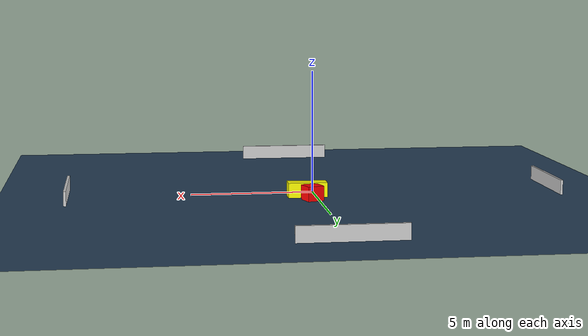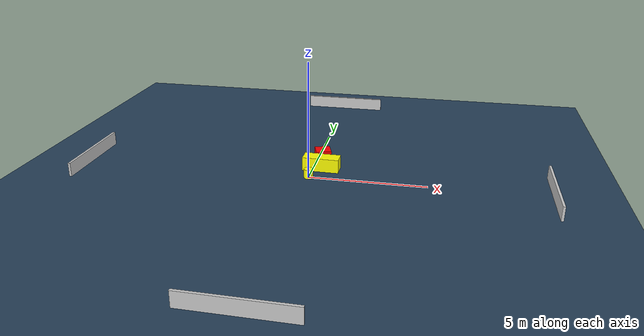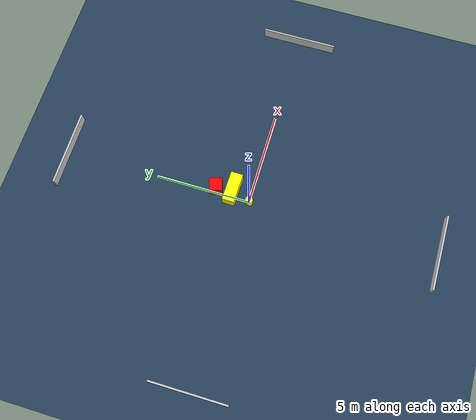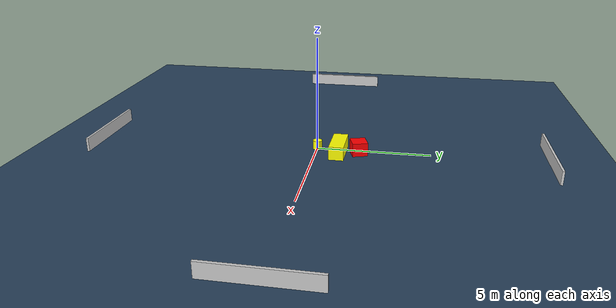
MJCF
<?xml version="1.0" ?>
<mujoco model="generated_environment">
  <option timestep="0.01" integrator="RK4" cone="elliptic"/>
  <default>
    <geom density="1"/>
  </default>
  <asset>
    <texture builtin="gradient" height="3072" name="skybox" rgb1="0.3 0.5 0.7" rgb2="0 0 0" type="skybox" width="512"/>
    <texture builtin="checker" height="300" name="groundplane" rgb1="0.2 0.3 0.4" rgb2="0.1 0.2 0.3" type="2d" width="300"/>
    <material name="groundplane" reflectance="0.2" texrepeat="5 5" texture="groundplane"/>
  </asset>
  <worldbody>
    <light dir="0 0 -1" directional="true" pos="0 0 1.5"/>
    <geom condim="3" friction="0.5 0.005 0.001" material="groundplane" name="floor" pos="0 0 0" size="0 0 0.05" type="plane"/>
    <body name="walls">
      <geom name="wall_1" condim="4" pos="-10.0 0.0 0.3" rgba="0.800000011920929 0.800000011920929 0.800000011920929 1.0" size="0.05 2.0 0.3" type="box"/>
      <geom name="wall_2" condim="4" pos="10.0 0.0 0.3" rgba="0.800000011920929 0.800000011920929 0.800000011920929 1.0" size="0.05 2.0 0.3" type="box"/>
      <geom name="wall_3" condim="4" pos="0.0 -10.0 0.3" rgba="0.800000011920929 0.800000011920929 0.800000011920929 1.0" size="2.0 0.05 0.3" type="box"/>
      <geom name="wall_4" condim="4" pos="0.0 10.0 0.3" rgba="0.800000011920929 0.800000011920929 0.800000011920929 1.0" size="2.0 0.05 0.3" type="box"/>
    </body>
    <body name="robot">
      <joint name="joint_x" type="slide" pos="0 0 0" axis="1 0 0"/>
      <joint name="joint_y" type="slide" pos="0 0 0" axis="0 1 0"/>
      <geom name="robot" type="cylinder" pos="0.0 0.0 0.2" size="0.2 0.2 0.0" mass="5.0" friction="1.0 0.005 0.0001" condim="4" rgba="1.0 1.0 0.0 1.0"/>
    </body>
    <body name="obstacle_1_movable">
      <geom name="obstacle_1_movable" condim="4" pos="0.3676967594547823 0.9993856321166713 0.3" euler="0 0 269.04079241158627" friction="0.0 0.005 0.001" rgba="1.0 1.0 0.0 1.0" size="0.3228654739816613 0.7934558887762648 0.3" type="box" mass="0.1"/>
      <joint type="free"/>
    </body>
    <body name="obstacle_2_static">
      <geom name="obstacle_2_static" condim="4" pos="0.2642170176558638 1.8813415365982502 0.3" euler="0 0 17.168303529996138" friction="0.0 0.005 0.001" rgba="1.0 0.0 0.0 1.0" size="0.3386197972117394 0.33718250607467626 0.3" type="box"/>
    </body>
  </worldbody>
  <actuator>
    <motor name="actuator_x" joint="joint_x" gear="1" ctrlrange="-1 1"/>
    <motor name="actuator_y" joint="joint_y" gear="1" ctrlrange="-1 1"/>
  </actuator>
</mujoco>
